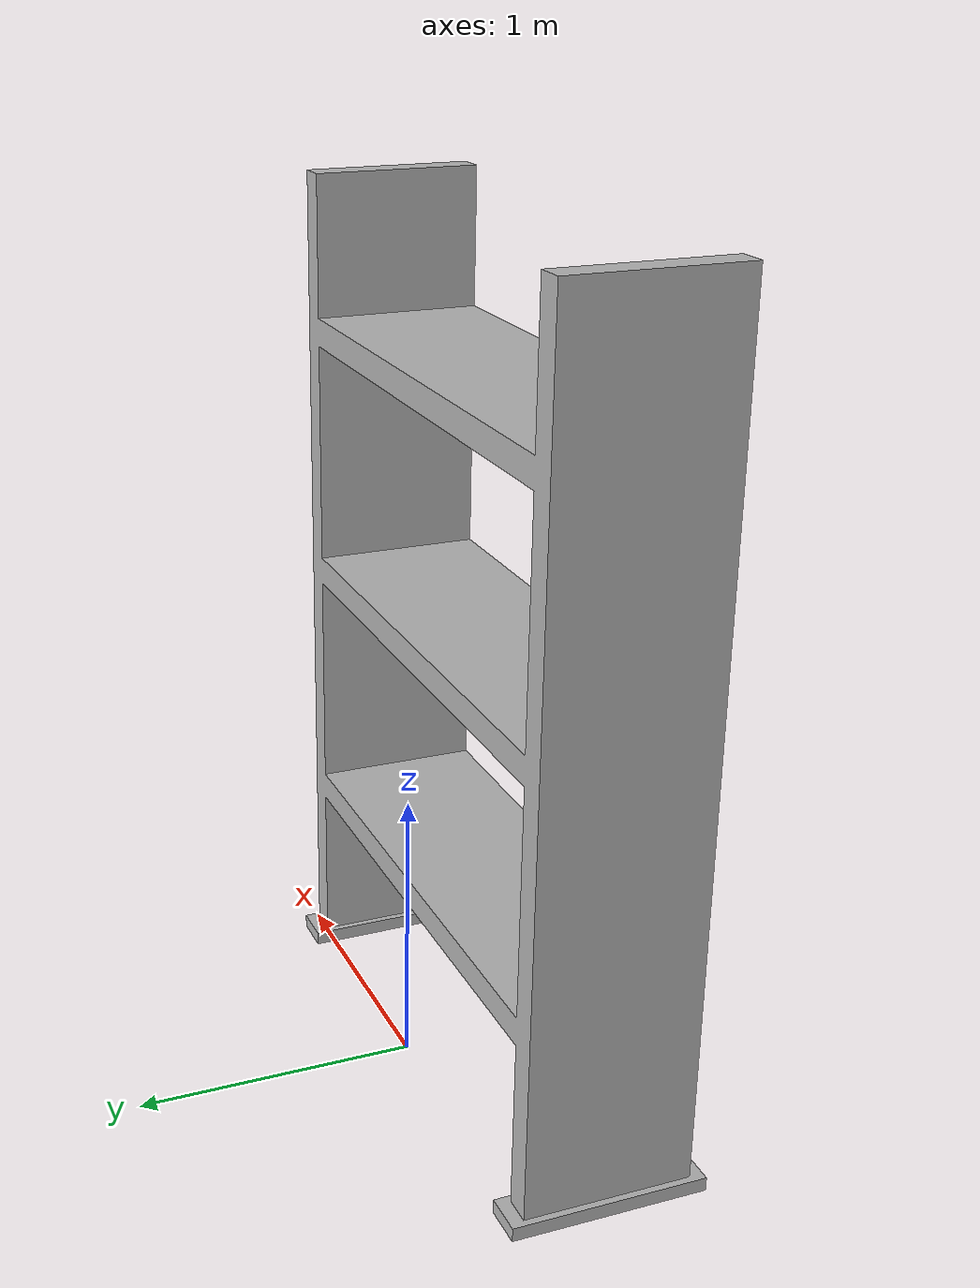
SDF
<?xml version="1.0" ?>
<sdf version="1.6">
  <model name="Shelf">
    <static>false</static>
    <link name="link">
     <inertial>
        <mass>20.0</mass>
        <inertia>
          <ixx>1.0</ixx>
          <ixy>0.0</ixy>
          <ixz>0.0</ixz>
          <iyy>1.0</iyy>
          <iyz>0.0</iyz>
          <izz>1.0</izz>
        </inertia>
      </inertial>
      <visual name="visual">
        <geometry>
          <mesh>
            <uri>model://Shelf/meshes/Shelf.dae</uri>
          </mesh>
        </geometry>
      </visual>
      <collision name="collision">
        <geometry>
          <mesh>
            <uri>model://Shelf/meshes/Shelf.dae</uri>
          </mesh>
        </geometry>
      </collision>
    </link>
  </model>
</sdf>
